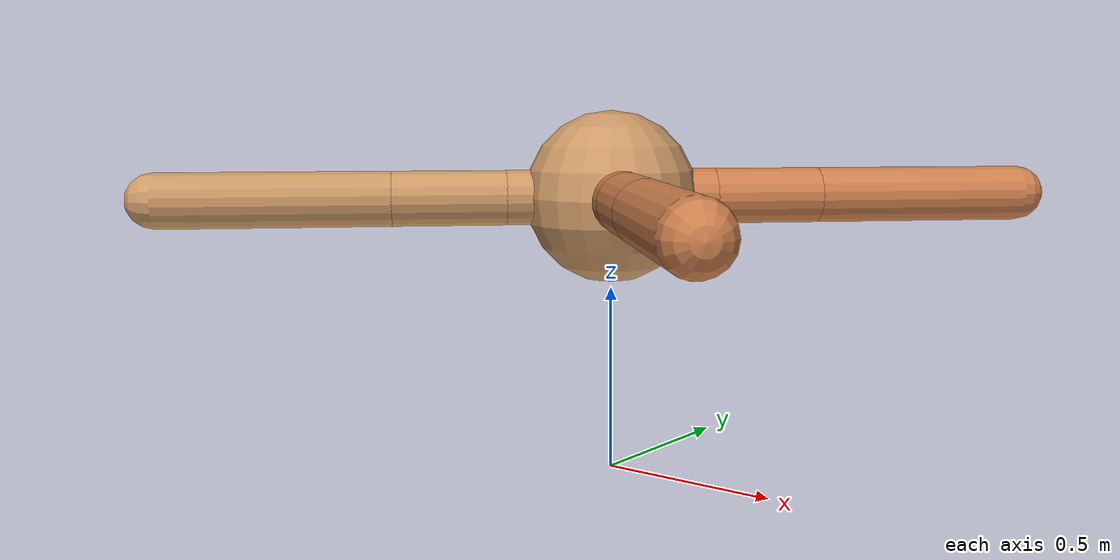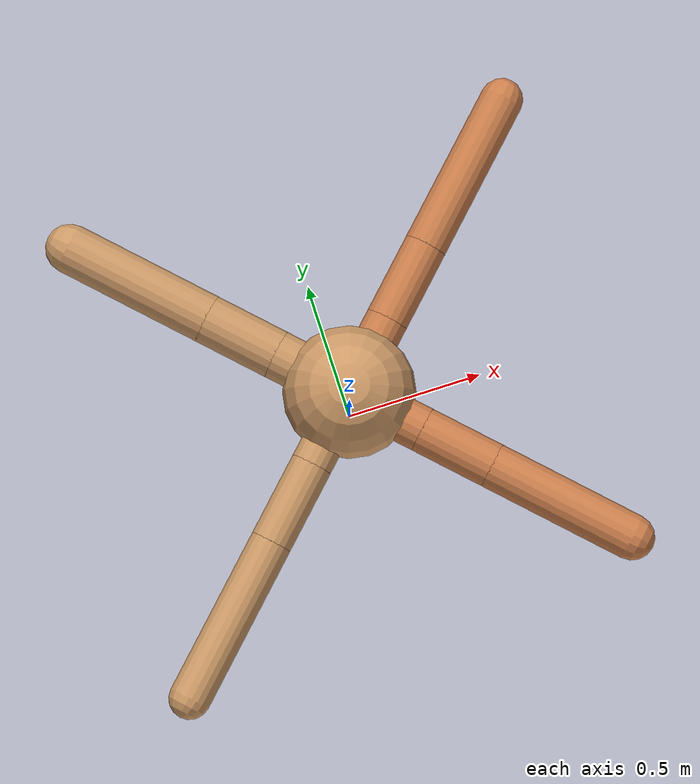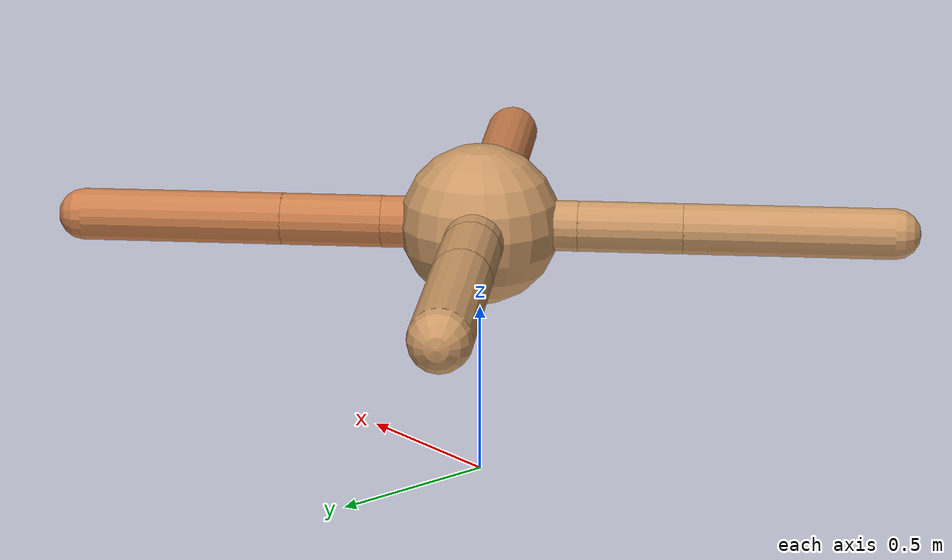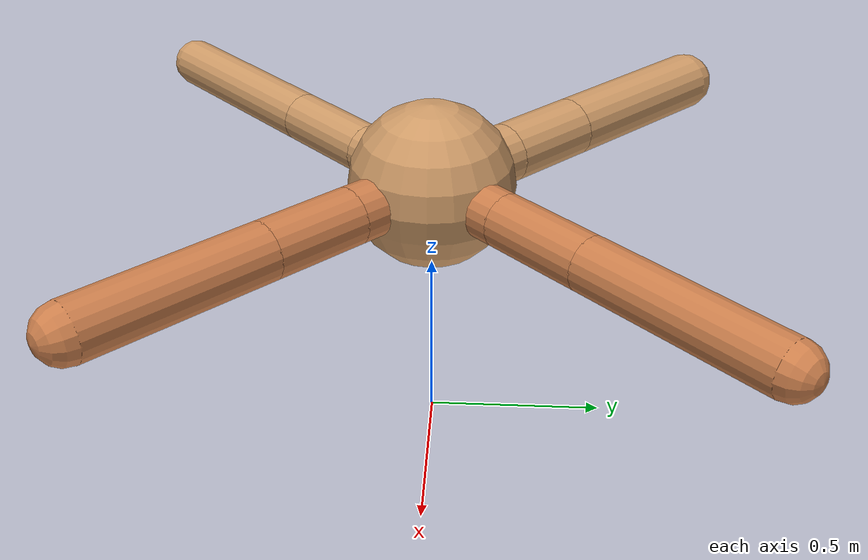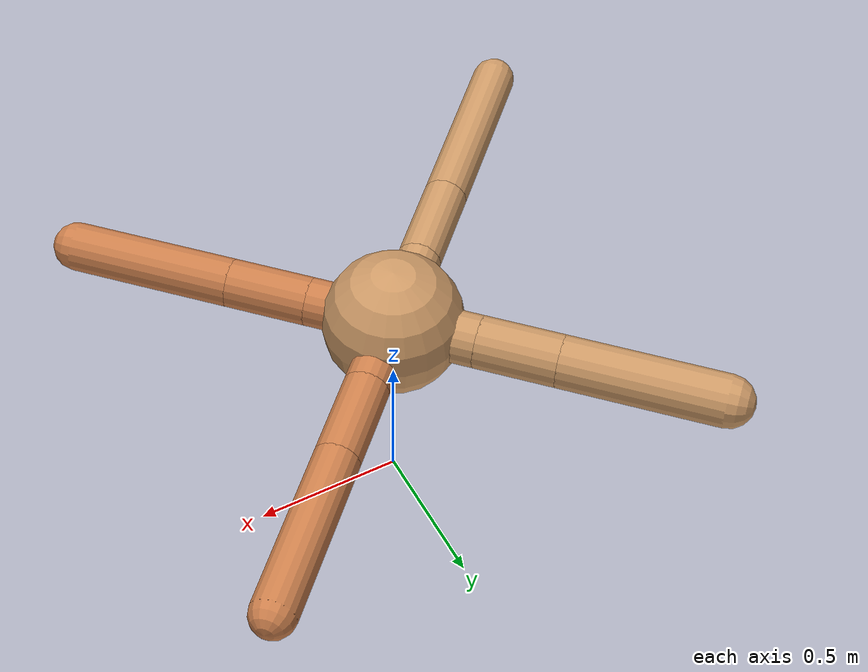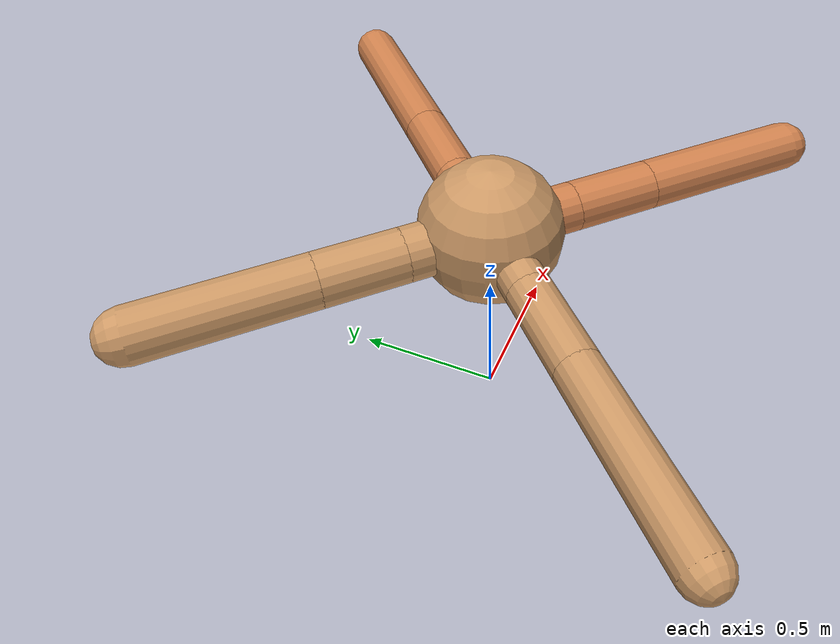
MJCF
<?xml version="1.0" ?>
<mujoco model="ant">

	<compiler angle="degree" coordinate="local" inertiafromgeom="true"/>

	<option integrator="RK4" timestep="0.01"/>

	<custom>

		<numeric data="0.0 0.0 0.55 1.0 0.0 0.0 0.0 0.0 1.0 0.0 -1.0 0.0 -1.0 0.0 1.0" name="init_qpos"/>

	</custom>

	<default>

		<joint armature="1" damping="1" limited="true"/>

		<geom conaffinity="0" condim="3" density="5.0" friction="1.5 0.1 0.1" margin="0.01" rgba="0.8 0.6 0.4 1"/>

	</default>

	<worldbody>

		<body name="torso" pos="0 0 0.75">

			<geom name="torso_geom" pos="0 0 0" size="0.23157676812249411" type="sphere"/>

			<!--joint armature="0" damping="0" limited="false" margin="0.01" name="root" pos="0 0 0" type="free"/-->

			<body name="front_left_leg" pos="0 0 0">

				<geom fromto="0 0 0 0.2 0.2 0" name="aux_1_geom" size="0.07523912009593636" type="capsule" rgba=".8 .5 .3 1"/>

				<body name="aux_1" pos="0.2 0.2 0">

					<joint axis="0 0 1" name="hip_1" pos="0.0 0.0 0.0" range="-40 40" type="hinge"/>

					<geom fromto="0 0 0 0.20553319258696026 0.20553319258696026 0" name="left_leg_geom" size="0.07523912009593636" type="capsule" rgba=".8 .5 .3 1"/>

					<body pos="0.20553319258696026 0.20553319258696026 0" name="front_left_foot">

						<joint axis="-1 1 0" name="ankle_1" pos="0.0 0.0 0.0" range="30 100" type="hinge"/>

						<geom fromto="0 0 0 0.4110663851739205 0.4110663851739205 0" name="left_ankle_geom" size="0.07523912009593636" type="capsule" rgba=".8 .5 .3 1"/>

					</body>

				</body>

			</body>

			<body name="front_right_leg" pos="0 0 0">

				<geom fromto="0 0 0 -0.2 0.2 0" name="aux_2_geom" size="0.08668455889850982" type="capsule"/>

				<body name="aux_2" pos="-0.2 0.2 0">

					<joint axis="0 0 1" name="hip_2" pos="0.0 0.0 0.0" range="-40 40" type="hinge"/>

					<geom fromto="0 0 0 -0.1900571055326652 0.1900571055326652 0" name="right_leg_geom" size="0.08668455889850982" type="capsule"/>

					<body pos="-0.1900571055326652 0.1900571055326652 0" name="front_right_foot">

						<joint axis="1 1 0" name="ankle_2" pos="0.0 0.0 0.0" range="-100 -30" type="hinge"/>

						<geom fromto="0 0 0 -0.3801142110653304 0.3801142110653304 0" name="right_ankle_geom" size="0.08668455889850982" type="capsule"/>

					</body>

				</body>

			</body>

			<body name="left_back_leg" pos="0 0 0">

				<geom fromto="0 0 0 -0.2 -0.2 0" name="aux_3_geom" size="0.07315176480425253" type="capsule"/>

				<body name="aux_3" pos="-0.2 -0.2 0">

					<joint axis="0 0 1" name="hip_3" pos="0.0 0.0 0.0" range="-40 40" type="hinge"/>

					<geom fromto="0 0 0 -0.21279807872575718 -0.21279807872575718 0" name="back_leg_geom" size="0.07315176480425253" type="capsule"/>

					<body pos="-0.21279807872575718 -0.21279807872575718 0" name="left_back_foot">

						<joint axis="-1 1 0" name="ankle_3" pos="0.0 0.0 0.0" range="-100 -30" type="hinge"/>

						<geom fromto="0 0 0 -0.42559615745151436 -0.42559615745151436 0" name="third_ankle_geom" size="0.07315176480425253" type="capsule"/>

					</body>

				</body>

			</body>

			<body name="right_back_leg" pos="0 0 0">

				<geom fromto="0 0 0 0.2 -0.2 0" name="aux_4_geom" size="0.07997506652509605" type="capsule" rgba=".8 .5 .3 1"/>

				<body name="aux_4" pos="0.2 -0.2 0">

					<joint axis="0 0 1" name="hip_4" pos="0.0 0.0 0.0" range="-40 40" type="hinge"/>

					<geom fromto="0 0 0 0.19070860671662673 -0.19070860671662673 0" name="rightback_leg_geom" size="0.07997506652509605" type="capsule" rgba=".8 .5 .3 1"/>

					<body pos="0.19070860671662673 -0.19070860671662673 0" name="right_back_foot">

						<joint axis="1 1 0" name="ankle_4" pos="0.0 0.0 0.0" range="30 100" type="hinge"/>

						<geom fromto="0 0 0 0.38141721343325347 -0.38141721343325347 0" name="fourth_ankle_geom" size="0.07997506652509605" type="capsule" rgba=".8 .5 .3 1"/>

					</body>

				</body>

			</body>

		</body>

	</worldbody>

	<actuator>

		<motor ctrllimited="true" ctrlrange="-1.0 1.0" joint="hip_4" gear="150"/>

		<motor ctrllimited="true" ctrlrange="-1.0 1.0" joint="ankle_4" gear="150"/>

		<motor ctrllimited="true" ctrlrange="-1.0 1.0" joint="hip_1" gear="150"/>

		<motor ctrllimited="true" ctrlrange="-1.0 1.0" joint="ankle_1" gear="150"/>

		<motor ctrllimited="true" ctrlrange="-1.0 1.0" joint="hip_2" gear="150"/>

		<motor ctrllimited="true" ctrlrange="-1.0 1.0" joint="ankle_2" gear="150"/>

		<motor ctrllimited="true" ctrlrange="-1.0 1.0" joint="hip_3" gear="150"/>

		<motor ctrllimited="true" ctrlrange="-1.0 1.0" joint="ankle_3" gear="150"/>

	</actuator>

</mujoco>
